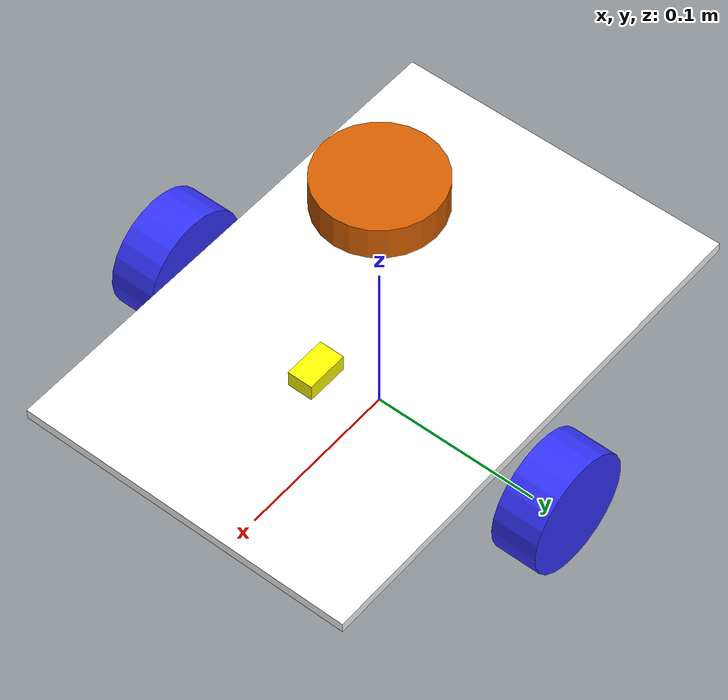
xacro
<?xml version="1.0"?>

<robot name="diffbot" xmlns:xacro="http://www.ros.org/wiki/xacro">

  <xacro:include filename="material.xacro" />

  <!-- Robot Parameters -->

  <!-- Chassis -->
  <xacro:property name="chassis_length" value="0.305"/>
  <xacro:property name="chassis_width"  value="0.203"/>
  <xacro:property name="chassis_height" value="0.006"/>

  <!-- Wheels -->
  <xacro:property name="wheel_radius" value="0.035"/>
  <xacro:property name="wheel_width"  value="0.027"/>
  <xacro:property name="wheel_separation" value="0.25"/>
  <xacro:property name="wheel_x_offset" value="0.015"/>
  <xacro:property name="wheel_z_offset" value="-0.02"/>

  <!-- IMU -->
  <xacro:property name="imu_length" value="0.025"/>
  <xacro:property name="imu_width" value="0.015"/>
  <xacro:property name="imu_height" value="0.01"/>

  <!-- Lidar -->
  <xacro:property name="laser_radius" value="0.035"/>
  <xacro:property name="laser_height" value="0.02"/>
  <xacro:property name="laser_base_height" value="0.03"/>

  <link name="base_link"></link>

  <!-- Chassis Link -->
  <link name="chassis_link">
    <visual>
      <origin xyz="0 0 ${chassis_height/2}" rpy="0 0 0" />
      <geometry>
        <box size="${chassis_length}
                   ${chassis_width}
                   ${chassis_height}"/>
      </geometry>
      <material name="white" />
    </visual>
  </link>

  <joint name="chassis_joint" type="fixed">
    <parent link="base_link" />
    <child link="chassis_link" />
    <origin xyz="0 0 ${-wheel_z_offset + wheel_radius}" />
  </joint>

  <!-- Left Wheel -->
  <link name="left_wheel">
    <visual>
      <geometry>
        <cylinder radius="${wheel_radius}"
                  length="${wheel_width}"/>
      </geometry>
      <material name="blue" />
    </visual>
  </link>

  <joint name="left_wheel_joint"
         type="fixed">
    <parent link="chassis_link"/>
    <child link="left_wheel"/>
    <origin
      xyz="${wheel_x_offset}
           ${wheel_separation/2}
           ${wheel_z_offset}"
      rpy="${pi/2} 0 0"/>
  </joint>

  <!-- Right Wheel -->
  <link name="right_wheel">
    <visual>
      <geometry>
        <cylinder radius="${wheel_radius}"
                  length="${wheel_width}"/>
      </geometry>
      <material name="blue" />
    </visual>
  </link>

  <joint name="right_wheel_joint" type="fixed">
    <parent link="chassis_link"/>
    <child link="right_wheel"/>
    <origin
      xyz="${wheel_x_offset}
           ${-wheel_separation/2}
           ${wheel_z_offset}"
      rpy="-${pi/2} 0 0"/>
  </joint>

  <!-- IMU -->
  <link name="imu_link">
    <visual>
      <geometry>
        <box size="${imu_length}
                   ${imu_width}
                   ${imu_height}"/>
      </geometry>
      <material name="yellow" />
    </visual>
  </link>

  <joint name="imu_joint" type="fixed">
    <parent link="chassis_link"/>
    <child link="imu_link"/>
    <origin
      xyz="0.05
           0
           ${chassis_height/2 + 0.015}"
      rpy="0 0 0"/>
  </joint>

  <link name="laser_frame">
    <visual>
      <geometry>
        <cylinder radius="${laser_radius}"
                  length="${laser_height}"/>
      </geometry>
    </visual>
  </link>

  <joint name="laser_joint" type="fixed">
    <parent link="chassis_link"/>
    <child link="laser_frame"/>
    <origin
        xyz="0 0 ${laser_base_height+0.08}"
        rpy="0 0 0"/>
  </joint>

</robot>

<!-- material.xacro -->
<robot xmlns:xacro="http://www.ros.org/wiki/xacro">

  <material name="white">
    <color rgba="1 1 1 1" />
  </material>

  <material name="orange">
    <color rgba="1 0.3 0.1 1" />
  </material>

  <material name="blue">
    <color rgba="0.2 0.2 1 1" />
  </material>

  <material name="black">
    <color rgba="0 0 0 1" />
  </material>

  <material name="red">
    <color rgba="1 0 0 1" />
  </material>

  <material name="yellow">
    <color rgba="1 1 0 1" />
  </material>

</robot>
